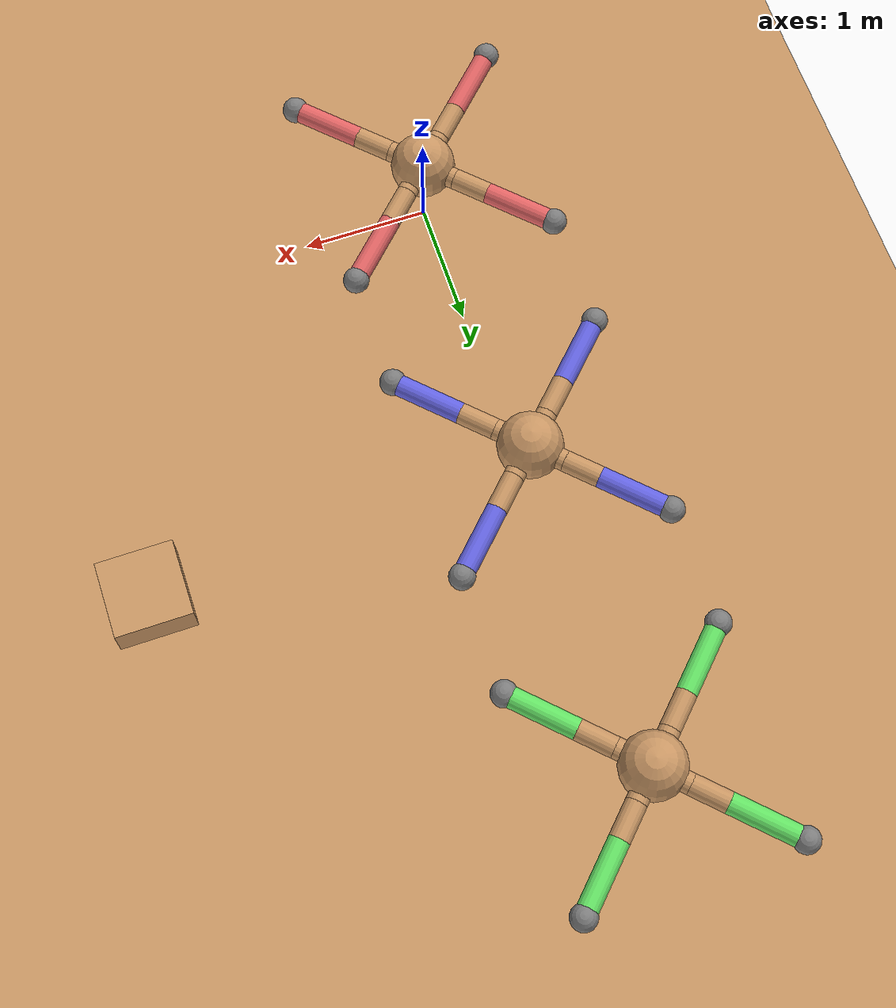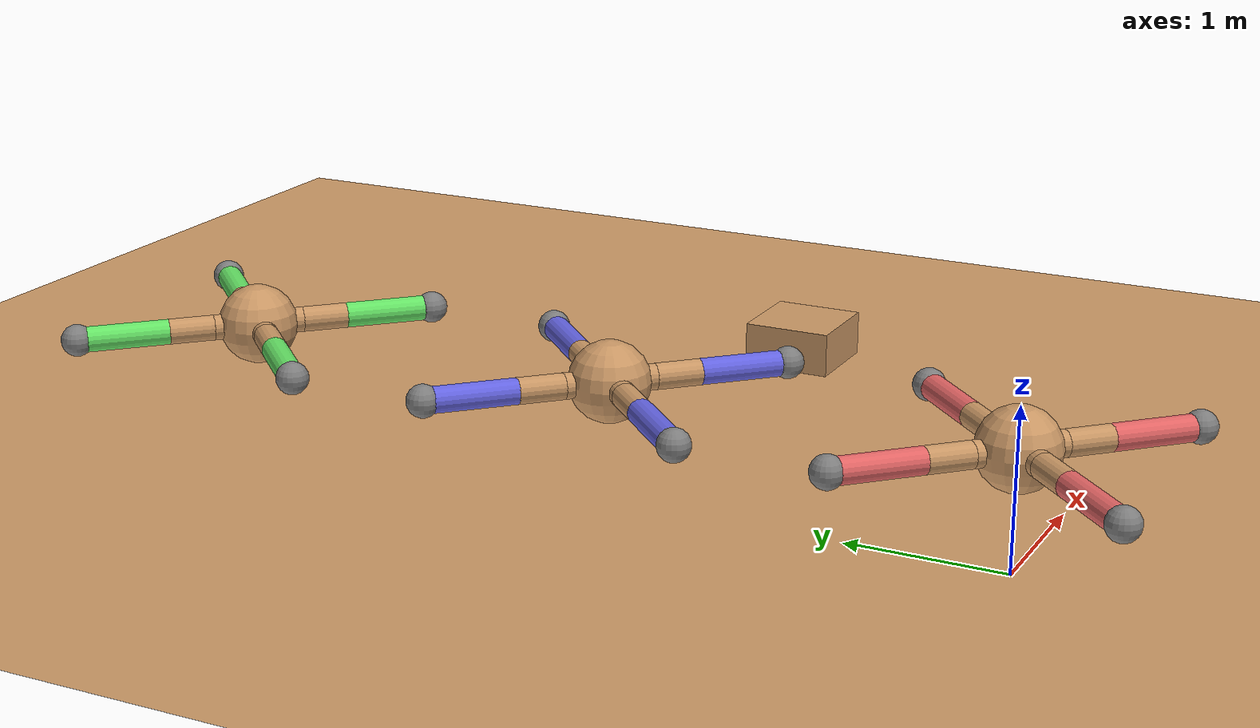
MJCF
<mujoco model="multi_ant_3">
  <compiler angle="degree" inertiafromgeom="true" autolimits="true"/>
  <option integrator="RK4" timestep="0.01"/>

  <default>
    <joint armature="1" damping="1" limited="true"/>
    <geom conaffinity="0" condim="3" density="5.0"
          friction="1.0 0.5 0.5" margin="0.01" rgba="0.8 0.6 0.4 1"/>
  </default>

  <asset>
    <texture name="texplane" type="2d" builtin="checker"
             rgb1="0.2 0.3 0.4" rgb2="0.1 0.2 0.3" width="512" height="512"/>
    <material name="MatPlane" reflectance="0.5" texture="texplane"
              texrepeat="1 1" texuniform="true"/>
    <material name="robot0_mat" rgba="0.8 0.3 0.3 1"/>
    <material name="robot1_mat" rgba="0.3 0.3 0.8 1"/>
    <material name="robot2_mat" rgba="0.3 0.8 0.3 1"/>
    <material name="box_mat"    rgba="0.9 0.9 0.2 1"/>
  </asset>

  <worldbody>
    <light cutoff="100" diffuse="1 1 1" dir="-0 0 -1.3" directional="true"
           exponent="1" pos="0 0 1.3" specular=".1 .1 .1"/>
    <geom conaffinity="1" condim="3" material="MatPlane" name="floor"
          pos="0 0 0" size="50 50 0.1" type="plane"/>

    <!-- ==================== ROBOT 0 (red, y=0) ==================== -->
    <body name="torso_r0" pos="0 0 0.75">
      <joint name="root_r0" type="free"/>
      <geom name="torso_geom_r0" type="sphere" size="0.25" material="robot0_mat"/>
      <body name="front_left_leg_r0" pos="0 0 0">
        <geom name="aux_1_geom_r0" fromto="0 0 0 0.2 0.2 0" size="0.08" type="capsule"/>
        <body name="aux_1_r0" pos="0.2 0.2 0">
          <joint name="hip_1_r0" axis="0 0 1" range="-30 30" type="hinge"/>
          <geom name="left_leg_geom_r0" fromto="0 0 0 0.2 0.2 0" size="0.08" type="capsule"/>
          <body name="left_ankle_r0" pos="0.2 0.2 0">
            <joint name="ankle_1_r0" axis="-1 1 0" range="30 70" type="hinge"/>
            <geom name="left_ankle_geom_r0" fromto="0 0 0 0.4 0.4 0" size="0.08" type="capsule"
                  rgba="0.9 0.4 0.4 1" conaffinity="1" condim="3"/>
            <site name="foot_fl_r0" pos="0.4 0.4 0" size="0.1" type="sphere"/>
          </body>
        </body>
      </body>
      <body name="front_right_leg_r0" pos="0 0 0">
        <geom name="aux_2_geom_r0" fromto="0 0 0 0.2 -0.2 0" size="0.08" type="capsule"/>
        <body name="aux_2_r0" pos="0.2 -0.2 0">
          <joint name="hip_2_r0" axis="0 0 1" range="-30 30" type="hinge"/>
          <geom name="right_leg_geom_r0" fromto="0 0 0 0.2 -0.2 0" size="0.08" type="capsule"/>
          <body name="right_ankle_r0" pos="0.2 -0.2 0">
            <joint name="ankle_2_r0" axis="1 1 0" range="30 70" type="hinge"/>
            <geom name="right_ankle_geom_r0" fromto="0 0 0 0.4 -0.4 0" size="0.08" type="capsule"
                  rgba="0.9 0.4 0.4 1" conaffinity="1" condim="3"/>
            <site name="foot_fr_r0" pos="0.4 -0.4 0" size="0.1" type="sphere"/>
          </body>
        </body>
      </body>
      <body name="back_left_leg_r0" pos="0 0 0">
        <geom name="aux_3_geom_r0" fromto="0 0 0 -0.2 0.2 0" size="0.08" type="capsule"/>
        <body name="aux_3_r0" pos="-0.2 0.2 0">
          <joint name="hip_3_r0" axis="0 0 1" range="-30 30" type="hinge"/>
          <geom name="back_leg_geom_r0" fromto="0 0 0 -0.2 0.2 0" size="0.08" type="capsule"/>
          <body name="back_left_ankle_r0" pos="-0.2 0.2 0">
            <joint name="ankle_3_r0" axis="1 1 0" range="30 70" type="hinge"/>
            <geom name="back_left_ankle_geom_r0" fromto="0 0 0 -0.4 0.4 0" size="0.08" type="capsule"
                  rgba="0.9 0.4 0.4 1" conaffinity="1" condim="3"/>
            <site name="foot_bl_r0" pos="-0.4 0.4 0" size="0.1" type="sphere"/>
          </body>
        </body>
      </body>
      <body name="back_right_leg_r0" pos="0 0 0">
        <geom name="aux_4_geom_r0" fromto="0 0 0 -0.2 -0.2 0" size="0.08" type="capsule"/>
        <body name="aux_4_r0" pos="-0.2 -0.2 0">
          <joint name="hip_4_r0" axis="0 0 1" range="-30 30" type="hinge"/>
          <geom name="back_right_leg_geom_r0" fromto="0 0 0 -0.2 -0.2 0" size="0.08" type="capsule"/>
          <body name="back_right_ankle_r0" pos="-0.2 -0.2 0">
            <joint name="ankle_4_r0" axis="-1 1 0" range="30 70" type="hinge"/>
            <geom name="back_right_ankle_geom_r0" fromto="0 0 0 -0.4 -0.4 0" size="0.08" type="capsule"
                  rgba="0.9 0.4 0.4 1" conaffinity="1" condim="3"/>
            <site name="foot_br_r0" pos="-0.4 -0.4 0" size="0.1" type="sphere"/>
          </body>
        </body>
      </body>
    </body>

    <!-- ==================== ROBOT 1 (blue, y=2.5) ==================== -->
    <body name="torso_r1" pos="0 2.5 0.75">
      <joint name="root_r1" type="free"/>
      <geom name="torso_geom_r1" type="sphere" size="0.25" material="robot1_mat"/>
      <body name="front_left_leg_r1" pos="0 0 0">
        <geom name="aux_1_geom_r1" fromto="0 0 0 0.2 0.2 0" size="0.08" type="capsule"/>
        <body name="aux_1_r1" pos="0.2 0.2 0">
          <joint name="hip_1_r1" axis="0 0 1" range="-30 30" type="hinge"/>
          <geom name="left_leg_geom_r1" fromto="0 0 0 0.2 0.2 0" size="0.08" type="capsule"/>
          <body name="left_ankle_r1" pos="0.2 0.2 0">
            <joint name="ankle_1_r1" axis="-1 1 0" range="30 70" type="hinge"/>
            <geom name="left_ankle_geom_r1" fromto="0 0 0 0.4 0.4 0" size="0.08" type="capsule"
                  rgba="0.4 0.4 0.9 1" conaffinity="1" condim="3"/>
            <site name="foot_fl_r1" pos="0.4 0.4 0" size="0.1" type="sphere"/>
          </body>
        </body>
      </body>
      <body name="front_right_leg_r1" pos="0 0 0">
        <geom name="aux_2_geom_r1" fromto="0 0 0 0.2 -0.2 0" size="0.08" type="capsule"/>
        <body name="aux_2_r1" pos="0.2 -0.2 0">
          <joint name="hip_2_r1" axis="0 0 1" range="-30 30" type="hinge"/>
          <geom name="right_leg_geom_r1" fromto="0 0 0 0.2 -0.2 0" size="0.08" type="capsule"/>
          <body name="right_ankle_r1" pos="0.2 -0.2 0">
            <joint name="ankle_2_r1" axis="1 1 0" range="30 70" type="hinge"/>
            <geom name="right_ankle_geom_r1" fromto="0 0 0 0.4 -0.4 0" size="0.08" type="capsule"
                  rgba="0.4 0.4 0.9 1" conaffinity="1" condim="3"/>
            <site name="foot_fr_r1" pos="0.4 -0.4 0" size="0.1" type="sphere"/>
          </body>
        </body>
      </body>
      <body name="back_left_leg_r1" pos="0 0 0">
        <geom name="aux_3_geom_r1" fromto="0 0 0 -0.2 0.2 0" size="0.08" type="capsule"/>
        <body name="aux_3_r1" pos="-0.2 0.2 0">
          <joint name="hip_3_r1" axis="0 0 1" range="-30 30" type="hinge"/>
          <geom name="back_leg_geom_r1" fromto="0 0 0 -0.2 0.2 0" size="0.08" type="capsule"/>
          <body name="back_left_ankle_r1" pos="-0.2 0.2 0">
            <joint name="ankle_3_r1" axis="1 1 0" range="30 70" type="hinge"/>
            <geom name="back_left_ankle_geom_r1" fromto="0 0 0 -0.4 0.4 0" size="0.08" type="capsule"
                  rgba="0.4 0.4 0.9 1" conaffinity="1" condim="3"/>
            <site name="foot_bl_r1" pos="-0.4 0.4 0" size="0.1" type="sphere"/>
          </body>
        </body>
      </body>
      <body name="back_right_leg_r1" pos="0 0 0">
        <geom name="aux_4_geom_r1" fromto="0 0 0 -0.2 -0.2 0" size="0.08" type="capsule"/>
        <body name="aux_4_r1" pos="-0.2 -0.2 0">
          <joint name="hip_4_r1" axis="0 0 1" range="-30 30" type="hinge"/>
          <geom name="back_right_leg_geom_r1" fromto="0 0 0 -0.2 -0.2 0" size="0.08" type="capsule"/>
          <body name="back_right_ankle_r1" pos="-0.2 -0.2 0">
            <joint name="ankle_4_r1" axis="-1 1 0" range="30 70" type="hinge"/>
            <geom name="back_right_ankle_geom_r1" fromto="0 0 0 -0.4 -0.4 0" size="0.08" type="capsule"
                  rgba="0.4 0.4 0.9 1" conaffinity="1" condim="3"/>
            <site name="foot_br_r1" pos="-0.4 -0.4 0" size="0.1" type="sphere"/>
          </body>
        </body>
      </body>
    </body>

    <!-- ==================== ROBOT 2 (green, y=5.0) ==================== -->
    <body name="torso_r2" pos="0 5.0 0.75">
      <joint name="root_r2" type="free"/>
      <geom name="torso_geom_r2" type="sphere" size="0.25" material="robot2_mat"/>
      <body name="front_left_leg_r2" pos="0 0 0">
        <geom name="aux_1_geom_r2" fromto="0 0 0 0.2 0.2 0" size="0.08" type="capsule"/>
        <body name="aux_1_r2" pos="0.2 0.2 0">
          <joint name="hip_1_r2" axis="0 0 1" range="-30 30" type="hinge"/>
          <geom name="left_leg_geom_r2" fromto="0 0 0 0.2 0.2 0" size="0.08" type="capsule"/>
          <body name="left_ankle_r2" pos="0.2 0.2 0">
            <joint name="ankle_1_r2" axis="-1 1 0" range="30 70" type="hinge"/>
            <geom name="left_ankle_geom_r2" fromto="0 0 0 0.4 0.4 0" size="0.08" type="capsule"
                  rgba="0.4 0.9 0.4 1" conaffinity="1" condim="3"/>
            <site name="foot_fl_r2" pos="0.4 0.4 0" size="0.1" type="sphere"/>
          </body>
        </body>
      </body>
      <body name="front_right_leg_r2" pos="0 0 0">
        <geom name="aux_2_geom_r2" fromto="0 0 0 0.2 -0.2 0" size="0.08" type="capsule"/>
        <body name="aux_2_r2" pos="0.2 -0.2 0">
          <joint name="hip_2_r2" axis="0 0 1" range="-30 30" type="hinge"/>
          <geom name="right_leg_geom_r2" fromto="0 0 0 0.2 -0.2 0" size="0.08" type="capsule"/>
          <body name="right_ankle_r2" pos="0.2 -0.2 0">
            <joint name="ankle_2_r2" axis="1 1 0" range="30 70" type="hinge"/>
            <geom name="right_ankle_geom_r2" fromto="0 0 0 0.4 -0.4 0" size="0.08" type="capsule"
                  rgba="0.4 0.9 0.4 1" conaffinity="1" condim="3"/>
            <site name="foot_fr_r2" pos="0.4 -0.4 0" size="0.1" type="sphere"/>
          </body>
        </body>
      </body>
      <body name="back_left_leg_r2" pos="0 0 0">
        <geom name="aux_3_geom_r2" fromto="0 0 0 -0.2 0.2 0" size="0.08" type="capsule"/>
        <body name="aux_3_r2" pos="-0.2 0.2 0">
          <joint name="hip_3_r2" axis="0 0 1" range="-30 30" type="hinge"/>
          <geom name="back_leg_geom_r2" fromto="0 0 0 -0.2 0.2 0" size="0.08" type="capsule"/>
          <body name="back_left_ankle_r2" pos="-0.2 0.2 0">
            <joint name="ankle_3_r2" axis="1 1 0" range="30 70" type="hinge"/>
            <geom name="back_left_ankle_geom_r2" fromto="0 0 0 -0.4 0.4 0" size="0.08" type="capsule"
                  rgba="0.4 0.9 0.4 1" conaffinity="1" condim="3"/>
            <site name="foot_bl_r2" pos="-0.4 0.4 0" size="0.1" type="sphere"/>
          </body>
        </body>
      </body>
      <body name="back_right_leg_r2" pos="0 0 0">
        <geom name="aux_4_geom_r2" fromto="0 0 0 -0.2 -0.2 0" size="0.08" type="capsule"/>
        <body name="aux_4_r2" pos="-0.2 -0.2 0">
          <joint name="hip_4_r2" axis="0 0 1" range="-30 30" type="hinge"/>
          <geom name="back_right_leg_geom_r2" fromto="0 0 0 -0.2 -0.2 0" size="0.08" type="capsule"/>
          <body name="back_right_ankle_r2" pos="-0.2 -0.2 0">
            <joint name="ankle_4_r2" axis="-1 1 0" range="30 70" type="hinge"/>
            <geom name="back_right_ankle_geom_r2" fromto="0 0 0 -0.4 -0.4 0" size="0.08" type="capsule"
                  rgba="0.4 0.9 0.4 1" conaffinity="1" condim="3"/>
            <site name="foot_br_r2" pos="-0.4 -0.4 0" size="0.1" type="sphere"/>
          </body>
        </body>
      </body>
    </body>

    <!-- ==================== PUSH BOX (coop_push task) ==================== -->
    <body name="push_box" pos="3.0 2.5 0.15">
      <joint name="box_joint" type="free"/>
      <geom name="box_geom" type="box" size="0.3 0.3 0.15" mass="5.0"
            material="box_mat" conaffinity="1" condim="3" friction="1.0 0.5 0.5"/>
    </body>
  </worldbody>

  <actuator>
    <!-- Robot 0 -->
    <motor name="m_hip_1_r0"   joint="hip_1_r0"   gear="150" ctrlrange="-1 1"/>
    <motor name="m_ankle_1_r0" joint="ankle_1_r0" gear="150" ctrlrange="-1 1"/>
    <motor name="m_hip_2_r0"   joint="hip_2_r0"   gear="150" ctrlrange="-1 1"/>
    <motor name="m_ankle_2_r0" joint="ankle_2_r0" gear="150" ctrlrange="-1 1"/>
    <motor name="m_hip_3_r0"   joint="hip_3_r0"   gear="150" ctrlrange="-1 1"/>
    <motor name="m_ankle_3_r0" joint="ankle_3_r0" gear="150" ctrlrange="-1 1"/>
    <motor name="m_hip_4_r0"   joint="hip_4_r0"   gear="150" ctrlrange="-1 1"/>
    <motor name="m_ankle_4_r0" joint="ankle_4_r0" gear="150" ctrlrange="-1 1"/>
    <!-- Robot 1 -->
    <motor name="m_hip_1_r1"   joint="hip_1_r1"   gear="150" ctrlrange="-1 1"/>
    <motor name="m_ankle_1_r1" joint="ankle_1_r1" gear="150" ctrlrange="-1 1"/>
    <motor name="m_hip_2_r1"   joint="hip_2_r1"   gear="150" ctrlrange="-1 1"/>
    <motor name="m_ankle_2_r1" joint="ankle_2_r1" gear="150" ctrlrange="-1 1"/>
    <motor name="m_hip_3_r1"   joint="hip_3_r1"   gear="150" ctrlrange="-1 1"/>
    <motor name="m_ankle_3_r1" joint="ankle_3_r1" gear="150" ctrlrange="-1 1"/>
    <motor name="m_hip_4_r1"   joint="hip_4_r1"   gear="150" ctrlrange="-1 1"/>
    <motor name="m_ankle_4_r1" joint="ankle_4_r1" gear="150" ctrlrange="-1 1"/>
    <!-- Robot 2 -->
    <motor name="m_hip_1_r2"   joint="hip_1_r2"   gear="150" ctrlrange="-1 1"/>
    <motor name="m_ankle_1_r2" joint="ankle_1_r2" gear="150" ctrlrange="-1 1"/>
    <motor name="m_hip_2_r2"   joint="hip_2_r2"   gear="150" ctrlrange="-1 1"/>
    <motor name="m_ankle_2_r2" joint="ankle_2_r2" gear="150" ctrlrange="-1 1"/>
    <motor name="m_hip_3_r2"   joint="hip_3_r2"   gear="150" ctrlrange="-1 1"/>
    <motor name="m_ankle_3_r2" joint="ankle_3_r2" gear="150" ctrlrange="-1 1"/>
    <motor name="m_hip_4_r2"   joint="hip_4_r2"   gear="150" ctrlrange="-1 1"/>
    <motor name="m_ankle_4_r2" joint="ankle_4_r2" gear="150" ctrlrange="-1 1"/>
  </actuator>

  <sensor>
    <!-- Touch sensors (4 per robot = 12 total) -->
    <touch name="touch_fl_r0" site="foot_fl_r0"/>
    <touch name="touch_fr_r0" site="foot_fr_r0"/>
    <touch name="touch_bl_r0" site="foot_bl_r0"/>
    <touch name="touch_br_r0" site="foot_br_r0"/>
    <touch name="touch_fl_r1" site="foot_fl_r1"/>
    <touch name="touch_fr_r1" site="foot_fr_r1"/>
    <touch name="touch_bl_r1" site="foot_bl_r1"/>
    <touch name="touch_br_r1" site="foot_br_r1"/>
    <touch name="touch_fl_r2" site="foot_fl_r2"/>
    <touch name="touch_fr_r2" site="foot_fr_r2"/>
    <touch name="touch_bl_r2" site="foot_bl_r2"/>
    <touch name="touch_br_r2" site="foot_br_r2"/>
  </sensor>
</mujoco>
